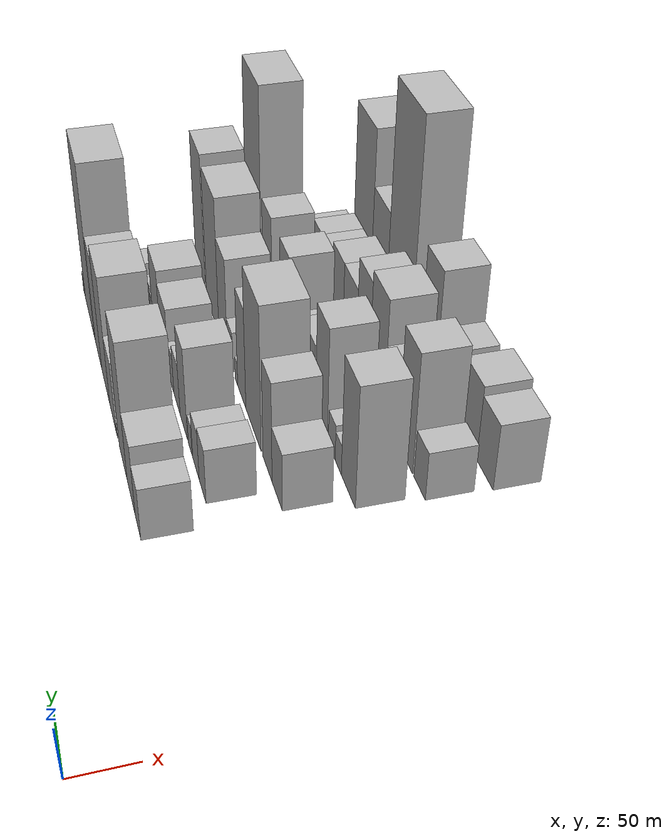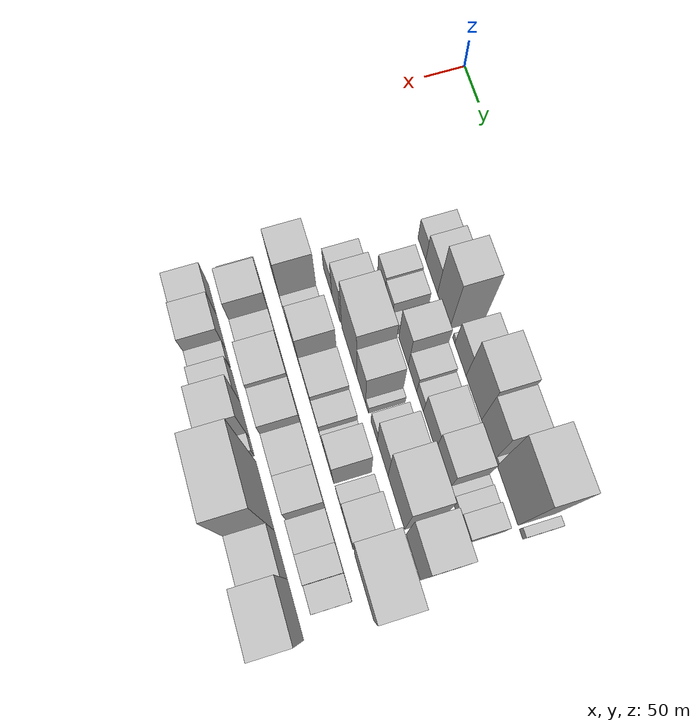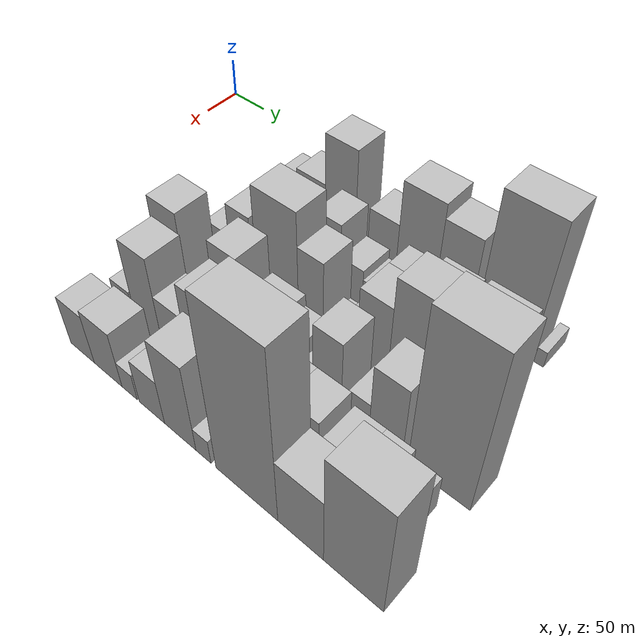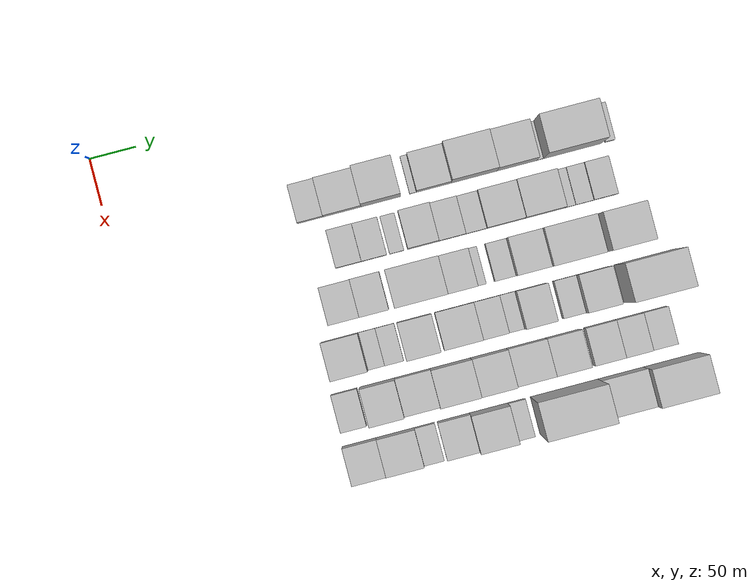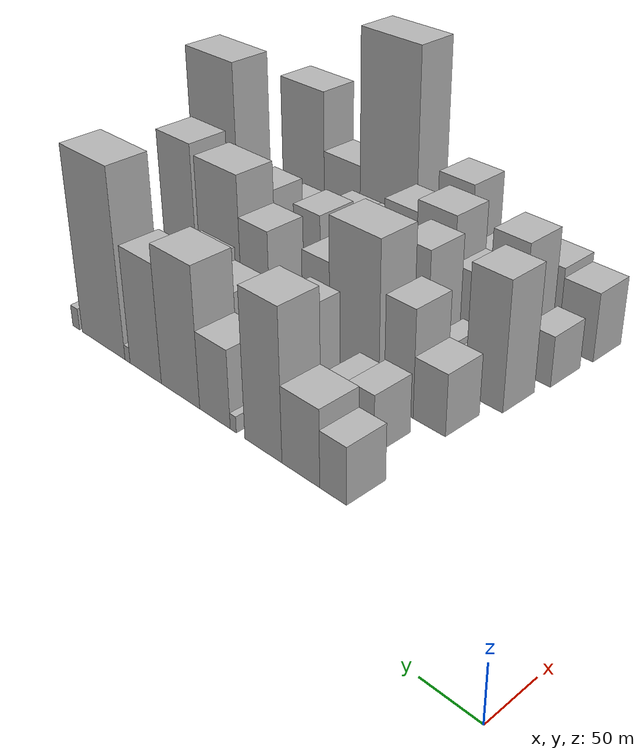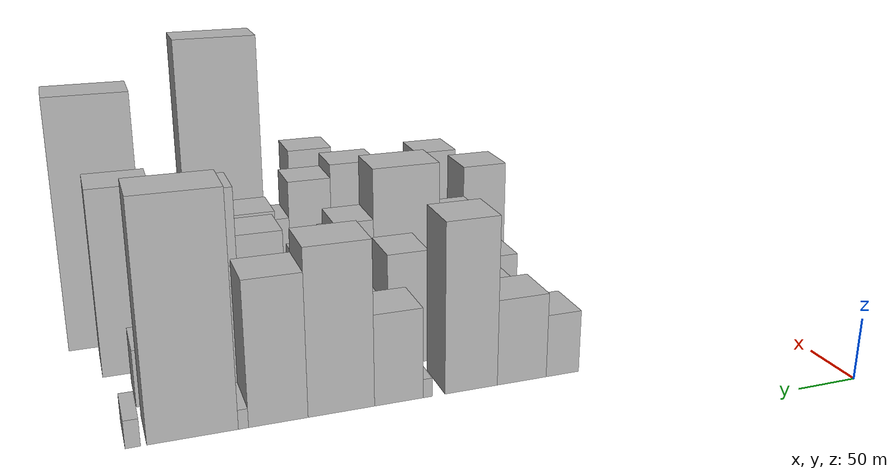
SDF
<sdf version="1.6">
 <world name="default">
  <model name="building_27">
   <static>1</static>
   <pose>100.0000 205.6077 0 0.000000 0.000000 0.000000</pose>
   <link name="link">
    <pose>0 0 25.50 0 0 0</pose>
    <collision name="collision"><geometry><box><size>40.0000 27.3926 51.0000</size></box></geometry></collision>
    <visual name="visual">
     <cast_shadows>0</cast_shadows>
     <geometry><box><size>40.0000 27.3926 51.0000</size></box></geometry>
     <material>
      <script>
       <uri>model://HANNAS_wall/materials/scripts</uri>
       <uri>model://HANNAS_wall/materials/textures</uri>
       <name>vrc/HANNAS_wall</name>
      </script>
     </material>
    </visual>
   </link>
  </model>
  <model name="building_28">
   <static>1</static>
   <pose>100.0000 239.4895 0 0.000000 0.000000 0.000000</pose>
   <link name="link">
    <pose>0 0 34.50 0 0 0</pose>
    <collision name="collision"><geometry><box><size>40.0000 40.3711 69.0000</size></box></geometry></collision>
    <visual name="visual">
     <cast_shadows>0</cast_shadows>
     <geometry><box><size>40.0000 40.3711 69.0000</size></box></geometry>
     <material>
      <script>
       <uri>model://HANNAS_wall/materials/scripts</uri>
       <uri>model://HANNAS_wall/materials/textures</uri>
       <name>vrc/HANNAS_wall</name>
      </script>
     </material>
    </visual>
   </link>
  </model>
  <model name="building_29">
   <static>1</static>
   <pose>100.0000 280.6004 0 0.000000 0.000000 0.000000</pose>
   <link name="link">
    <pose>0 0 67.50 0 0 0</pose>
    <collision name="collision"><geometry><box><size>40.0000 41.8506 135.0000</size></box></geometry></collision>
    <visual name="visual">
     <cast_shadows>0</cast_shadows>
     <geometry><box><size>40.0000 41.8506 135.0000</size></box></geometry>
     <material>
      <script>
       <uri>model://HANNAS_wall/materials/scripts</uri>
       <uri>model://HANNAS_wall/materials/textures</uri>
       <name>vrc/HANNAS_wall</name>
      </script>
     </material>
    </visual>
   </link>
  </model>
  <model name="building_30">
   <static>1</static>
   <pose>100.0000 315.0890 0 0.000000 0.000000 0.000000</pose>
   <link name="link">
    <pose>0 0 7.50 0 0 0</pose>
    <collision name="collision"><geometry><box><size>40.0000 7.1265 15.0000</size></box></geometry></collision>
    <visual name="visual">
     <cast_shadows>0</cast_shadows>
     <geometry><box><size>40.0000 7.1265 15.0000</size></box></geometry>
     <material>
      <script>
       <uri>model://HANNAS_wall/materials/scripts</uri>
       <uri>model://HANNAS_wall/materials/textures</uri>
       <name>vrc/HANNAS_wall</name>
      </script>
     </material>
    </visual>
   </link>
  </model>
  <model name="building_31">
   <static>1</static>
   <pose>100.0000 337.2113 0 0.000000 0.000000 0.000000</pose>
   <link name="link">
    <pose>0 0 36.00 0 0 0</pose>
    <collision name="collision"><geometry><box><size>40.0000 37.1180 72.0000</size></box></geometry></collision>
    <visual name="visual">
     <cast_shadows>0</cast_shadows>
     <geometry><box><size>40.0000 37.1180 72.0000</size></box></geometry>
     <material>
      <script>
       <uri>model://HANNAS_wall/materials/scripts</uri>
       <uri>model://HANNAS_wall/materials/textures</uri>
       <name>vrc/HANNAS_wall</name>
      </script>
     </material>
    </visual>
   </link>
  </model>
  <model name="building_32">
   <static>1</static>
   <pose>100.0000 380.3562 0 0.000000 0.000000 0.000000</pose>
   <link name="link">
    <pose>0 0 64.50 0 0 0</pose>
    <collision name="collision"><geometry><box><size>40.0000 49.1719 129.0000</size></box></geometry></collision>
    <visual name="visual">
     <cast_shadows>0</cast_shadows>
     <geometry><box><size>40.0000 49.1719 129.0000</size></box></geometry>
     <material>
      <script>
       <uri>model://HANNAS_wall/materials/scripts</uri>
       <uri>model://HANNAS_wall/materials/textures</uri>
       <name>vrc/HANNAS_wall</name>
      </script>
     </material>
    </visual>
   </link>
  </model>
  <model name="building_33">
   <static>1</static>
   <pose>100.0000 426.1538 0 0.000000 0.000000 0.000000</pose>
   <link name="link">
    <pose>0 0 55.50 0 0 0</pose>
    <collision name="collision"><geometry><box><size>40.0000 42.4232 111.0000</size></box></geometry></collision>
    <visual name="visual">
     <cast_shadows>0</cast_shadows>
     <geometry><box><size>40.0000 42.4232 111.0000</size></box></geometry>
     <material>
      <script>
       <uri>model://HANNAS_wall/materials/scripts</uri>
       <uri>model://HANNAS_wall/materials/textures</uri>
       <name>vrc/HANNAS_wall</name>
      </script>
     </material>
    </visual>
   </link>
  </model>
  <model name="building_34">
   <static>1</static>
   <pose>100.0000 450.9216 0 0.000000 0.000000 0.000000</pose>
   <link name="link">
    <pose>0 0 7.50 0 0 0</pose>
    <collision name="collision"><geometry><box><size>40.0000 7.1123 15.0000</size></box></geometry></collision>
    <visual name="visual">
     <cast_shadows>0</cast_shadows>
     <geometry><box><size>40.0000 7.1123 15.0000</size></box></geometry>
     <material>
      <script>
       <uri>model://HANNAS_wall/materials/scripts</uri>
       <uri>model://HANNAS_wall/materials/textures</uri>
       <name>vrc/HANNAS_wall</name>
      </script>
     </material>
    </visual>
   </link>
  </model>
  <model name="building_35">
   <static>1</static>
   <pose>100.0000 485.5800 0 0.000000 0.000000 0.000000</pose>
   <link name="link">
    <pose>0 0 88.50 0 0 0</pose>
    <collision name="collision"><geometry><box><size>40.0000 62.2045 177.0000</size></box></geometry></collision>
    <visual name="visual">
     <cast_shadows>0</cast_shadows>
     <geometry><box><size>40.0000 62.2045 177.0000</size></box></geometry>
     <material>
      <script>
       <uri>model://HANNAS_wall/materials/scripts</uri>
       <uri>model://HANNAS_wall/materials/textures</uri>
       <name>vrc/HANNAS_wall</name>
      </script>
     </material>
    </visual>
   </link>
  </model>
  <model name="building_36">
   <static>1</static>
   <pose>100.0000 525.7993 0 0.000000 0.000000 0.000000</pose>
   <link name="link">
    <pose>0 0 10.50 0 0 0</pose>
    <collision name="collision"><geometry><box><size>40.0000 10.2343 21.0000</size></box></geometry></collision>
    <visual name="visual">
     <cast_shadows>0</cast_shadows>
     <geometry><box><size>40.0000 10.2343 21.0000</size></box></geometry>
     <material>
      <script>
       <uri>model://HANNAS_wall/materials/scripts</uri>
       <uri>model://HANNAS_wall/materials/textures</uri>
       <name>vrc/HANNAS_wall</name>
      </script>
     </material>
    </visual>
   </link>
  </model>
  <model name="building_74">
   <static>1</static>
   <pose>155.0000 232.0547 0 0.000000 0.000000 0.000000</pose>
   <link name="link">
    <pose>0 0 27.00 0 0 0</pose>
    <collision name="collision"><geometry><box><size>40.0000 27.2698 54.0000</size></box></geometry></collision>
    <visual name="visual">
     <cast_shadows>0</cast_shadows>
     <geometry><box><size>40.0000 27.2698 54.0000</size></box></geometry>
     <material>
      <script>
       <uri>model://HANNAS_wall/materials/scripts</uri>
       <uri>model://HANNAS_wall/materials/textures</uri>
       <name>vrc/HANNAS_wall</name>
      </script>
     </material>
    </visual>
   </link>
  </model>
  <model name="building_75">
   <static>1</static>
   <pose>155.0000 259.1431 0 0.000000 0.000000 0.000000</pose>
   <link name="link">
    <pose>0 0 24.00 0 0 0</pose>
    <collision name="collision"><geometry><box><size>40.0000 26.9070 48.0000</size></box></geometry></collision>
    <visual name="visual">
     <cast_shadows>0</cast_shadows>
     <geometry><box><size>40.0000 26.9070 48.0000</size></box></geometry>
     <material>
      <script>
       <uri>model://HANNAS_wall/materials/scripts</uri>
       <uri>model://HANNAS_wall/materials/textures</uri>
       <name>vrc/HANNAS_wall</name>
      </script>
     </material>
    </visual>
   </link>
  </model>
  <model name="building_76">
   <static>1</static>
   <pose>155.0000 283.2390 0 0.000000 0.000000 0.000000</pose>
   <link name="link">
    <pose>0 0 15.00 0 0 0</pose>
    <collision name="collision"><geometry><box><size>40.0000 15.2848 30.0000</size></box></geometry></collision>
    <visual name="visual">
     <cast_shadows>0</cast_shadows>
     <geometry><box><size>40.0000 15.2848 30.0000</size></box></geometry>
     <material>
      <script>
       <uri>model://HANNAS_wall/materials/scripts</uri>
       <uri>model://HANNAS_wall/materials/textures</uri>
       <name>vrc/HANNAS_wall</name>
      </script>
     </material>
    </visual>
   </link>
  </model>
  <model name="building_77">
   <static>1</static>
   <pose>155.0000 311.3578 0 0.000000 0.000000 0.000000</pose>
   <link name="link">
    <pose>0 0 46.50 0 0 0</pose>
    <collision name="collision"><geometry><box><size>40.0000 32.9528 93.0000</size></box></geometry></collision>
    <visual name="visual">
     <cast_shadows>0</cast_shadows>
     <geometry><box><size>40.0000 32.9528 93.0000</size></box></geometry>
     <material>
      <script>
       <uri>model://HANNAS_wall/materials/scripts</uri>
       <uri>model://HANNAS_wall/materials/textures</uri>
       <name>vrc/HANNAS_wall</name>
      </script>
     </material>
    </visual>
   </link>
  </model>
  <model name="building_78">
   <static>1</static>
   <pose>155.0000 342.3246 0 0.000000 0.000000 0.000000</pose>
   <link name="link">
    <pose>0 0 25.50 0 0 0</pose>
    <collision name="collision"><geometry><box><size>40.0000 28.9808 51.0000</size></box></geometry></collision>
    <visual name="visual">
     <cast_shadows>0</cast_shadows>
     <geometry><box><size>40.0000 28.9808 51.0000</size></box></geometry>
     <material>
      <script>
       <uri>model://HANNAS_wall/materials/scripts</uri>
       <uri>model://HANNAS_wall/materials/textures</uri>
       <name>vrc/HANNAS_wall</name>
      </script>
     </material>
    </visual>
   </link>
  </model>
  <model name="building_79">
   <static>1</static>
   <pose>155.0000 367.9172 0 0.000000 0.000000 0.000000</pose>
   <link name="link">
    <pose>0 0 19.50 0 0 0</pose>
    <collision name="collision"><geometry><box><size>40.0000 22.2045 39.0000</size></box></geometry></collision>
    <visual name="visual">
     <cast_shadows>0</cast_shadows>
     <geometry><box><size>40.0000 22.2045 39.0000</size></box></geometry>
     <material>
      <script>
       <uri>model://HANNAS_wall/materials/scripts</uri>
       <uri>model://HANNAS_wall/materials/textures</uri>
       <name>vrc/HANNAS_wall</name>
      </script>
     </material>
    </visual>
   </link>
  </model>
  <model name="building_80">
   <static>1</static>
   <pose>155.0000 399.4672 0 0.000000 0.000000 0.000000</pose>
   <link name="link">
    <pose>0 0 36.00 0 0 0</pose>
    <collision name="collision"><geometry><box><size>40.0000 40.8955 72.0000</size></box></geometry></collision>
    <visual name="visual">
     <cast_shadows>0</cast_shadows>
     <geometry><box><size>40.0000 40.8955 72.0000</size></box></geometry>
     <material>
      <script>
       <uri>model://HANNAS_wall/materials/scripts</uri>
       <uri>model://HANNAS_wall/materials/textures</uri>
       <name>vrc/HANNAS_wall</name>
      </script>
     </material>
    </visual>
   </link>
  </model>
  <model name="building_81">
   <static>1</static>
   <pose>155.0000 441.2642 0 0.000000 0.000000 0.000000</pose>
   <link name="link">
    <pose>0 0 42.00 0 0 0</pose>
    <collision name="collision"><geometry><box><size>40.0000 42.6985 84.0000</size></box></geometry></collision>
    <visual name="visual">
     <cast_shadows>0</cast_shadows>
     <geometry><box><size>40.0000 42.6985 84.0000</size></box></geometry>
     <material>
      <script>
       <uri>model://HANNAS_wall/materials/scripts</uri>
       <uri>model://HANNAS_wall/materials/textures</uri>
       <name>vrc/HANNAS_wall</name>
      </script>
     </material>
    </visual>
   </link>
  </model>
  <model name="building_82">
   <static>1</static>
   <pose>155.0000 468.2930 0 0.000000 0.000000 0.000000</pose>
   <link name="link">
    <pose>0 0 13.50 0 0 0</pose>
    <collision name="collision"><geometry><box><size>40.0000 11.3591 27.0000</size></box></geometry></collision>
    <visual name="visual">
     <cast_shadows>0</cast_shadows>
     <geometry><box><size>40.0000 11.3591 27.0000</size></box></geometry>
     <material>
      <script>
       <uri>model://HANNAS_wall/materials/scripts</uri>
       <uri>model://HANNAS_wall/materials/textures</uri>
       <name>vrc/HANNAS_wall</name>
      </script>
     </material>
    </visual>
   </link>
  </model>
  <model name="building_83">
   <static>1</static>
   <pose>155.0000 483.4692 0 0.000000 0.000000 0.000000</pose>
   <link name="link">
    <pose>0 0 16.50 0 0 0</pose>
    <collision name="collision"><geometry><box><size>40.0000 18.9933 33.0000</size></box></geometry></collision>
    <visual name="visual">
     <cast_shadows>0</cast_shadows>
     <geometry><box><size>40.0000 18.9933 33.0000</size></box></geometry>
     <material>
      <script>
       <uri>model://HANNAS_wall/materials/scripts</uri>
       <uri>model://HANNAS_wall/materials/textures</uri>
       <name>vrc/HANNAS_wall</name>
      </script>
     </material>
    </visual>
   </link>
  </model>
  <model name="building_84">
   <static>1</static>
   <pose>155.0000 505.7651 0 0.000000 0.000000 0.000000</pose>
   <link name="link">
    <pose>0 0 22.50 0 0 0</pose>
    <collision name="collision"><geometry><box><size>40.0000 25.5984 45.0000</size></box></geometry></collision>
    <visual name="visual">
     <cast_shadows>0</cast_shadows>
     <geometry><box><size>40.0000 25.5984 45.0000</size></box></geometry>
     <material>
      <script>
       <uri>model://HANNAS_wall/materials/scripts</uri>
       <uri>model://HANNAS_wall/materials/textures</uri>
       <name>vrc/HANNAS_wall</name>
      </script>
     </material>
    </visual>
   </link>
  </model>
  <model name="building_127">
   <static>1</static>
   <pose>210.0000 212.5537 0 0.000000 0.000000 0.000000</pose>
   <link name="link">
    <pose>0 0 28.50 0 0 0</pose>
    <collision name="collision"><geometry><box><size>40.0000 33.4415 57.0000</size></box></geometry></collision>
    <visual name="visual">
     <cast_shadows>0</cast_shadows>
     <geometry><box><size>40.0000 33.4415 57.0000</size></box></geometry>
     <material>
      <script>
       <uri>model://HANNAS_wall/materials/scripts</uri>
       <uri>model://HANNAS_wall/materials/textures</uri>
       <name>vrc/HANNAS_wall</name>
      </script>
     </material>
    </visual>
   </link>
  </model>
  <model name="building_128">
   <static>1</static>
   <pose>210.0000 244.8355 0 0.000000 0.000000 0.000000</pose>
   <link name="link">
    <pose>0 0 49.50 0 0 0</pose>
    <collision name="collision"><geometry><box><size>40.0000 31.1221 99.0000</size></box></geometry></collision>
    <visual name="visual">
     <cast_shadows>0</cast_shadows>
     <geometry><box><size>40.0000 31.1221 99.0000</size></box></geometry>
     <material>
      <script>
       <uri>model://HANNAS_wall/materials/scripts</uri>
       <uri>model://HANNAS_wall/materials/textures</uri>
       <name>vrc/HANNAS_wall</name>
      </script>
     </material>
    </visual>
   </link>
  </model>
  <model name="building_129">
   <static>1</static>
   <pose>210.0000 294.2511 0 0.000000 0.000000 0.000000</pose>
   <link name="link">
    <pose>0 0 72.00 0 0 0</pose>
    <collision name="collision"><geometry><box><size>40.0000 55.7090 144.0000</size></box></geometry></collision>
    <visual name="visual">
     <cast_shadows>0</cast_shadows>
     <geometry><box><size>40.0000 55.7090 144.0000</size></box></geometry>
     <material>
      <script>
       <uri>model://HANNAS_wall/materials/scripts</uri>
       <uri>model://HANNAS_wall/materials/textures</uri>
       <name>vrc/HANNAS_wall</name>
      </script>
     </material>
    </visual>
   </link>
  </model>
  <model name="building_130">
   <static>1</static>
   <pose>210.0000 338.0391 0 0.000000 0.000000 0.000000</pose>
   <link name="link">
    <pose>0 0 51.00 0 0 0</pose>
    <collision name="collision"><geometry><box><size>40.0000 31.8671 102.0000</size></box></geometry></collision>
    <visual name="visual">
     <cast_shadows>0</cast_shadows>
     <geometry><box><size>40.0000 31.8671 102.0000</size></box></geometry>
     <material>
      <script>
       <uri>model://HANNAS_wall/materials/scripts</uri>
       <uri>model://HANNAS_wall/materials/textures</uri>
       <name>vrc/HANNAS_wall</name>
      </script>
     </material>
    </visual>
   </link>
  </model>
  <model name="building_131">
   <static>1</static>
   <pose>210.0000 359.0696 0 0.000000 0.000000 0.000000</pose>
   <link name="link">
    <pose>0 0 12.00 0 0 0</pose>
    <collision name="collision"><geometry><box><size>40.0000 10.1938 24.0000</size></box></geometry></collision>
    <visual name="visual">
     <cast_shadows>0</cast_shadows>
     <geometry><box><size>40.0000 10.1938 24.0000</size></box></geometry>
     <material>
      <script>
       <uri>model://HANNAS_wall/materials/scripts</uri>
       <uri>model://HANNAS_wall/materials/textures</uri>
       <name>vrc/HANNAS_wall</name>
      </script>
     </material>
    </visual>
   </link>
  </model>
  <model name="building_132">
   <static>1</static>
   <pose>210.0000 384.2644 0 0.000000 0.000000 0.000000</pose>
   <link name="link">
    <pose>0 0 21.00 0 0 0</pose>
    <collision name="collision"><geometry><box><size>40.0000 22.1958 42.0000</size></box></geometry></collision>
    <visual name="visual">
     <cast_shadows>0</cast_shadows>
     <geometry><box><size>40.0000 22.1958 42.0000</size></box></geometry>
     <material>
      <script>
       <uri>model://HANNAS_wall/materials/scripts</uri>
       <uri>model://HANNAS_wall/materials/textures</uri>
       <name>vrc/HANNAS_wall</name>
      </script>
     </material>
    </visual>
   </link>
  </model>
  <model name="building_133">
   <static>1</static>
   <pose>210.0000 413.6392 0 0.000000 0.000000 0.000000</pose>
   <link name="link">
    <pose>0 0 51.00 0 0 0</pose>
    <collision name="collision"><geometry><box><size>40.0000 36.5537 102.0000</size></box></geometry></collision>
    <visual name="visual">
     <cast_shadows>0</cast_shadows>
     <geometry><box><size>40.0000 36.5537 102.0000</size></box></geometry>
     <material>
      <script>
       <uri>model://HANNAS_wall/materials/scripts</uri>
       <uri>model://HANNAS_wall/materials/textures</uri>
       <name>vrc/HANNAS_wall</name>
      </script>
     </material>
    </visual>
   </link>
  </model>
  <model name="building_134">
   <static>1</static>
   <pose>210.0000 459.7315 0 0.000000 0.000000 0.000000</pose>
   <link name="link">
    <pose>0 0 70.50 0 0 0</pose>
    <collision name="collision"><geometry><box><size>40.0000 55.6308 141.0000</size></box></geometry></collision>
    <visual name="visual">
     <cast_shadows>0</cast_shadows>
     <geometry><box><size>40.0000 55.6308 141.0000</size></box></geometry>
     <material>
      <script>
       <uri>model://HANNAS_wall/materials/scripts</uri>
       <uri>model://HANNAS_wall/materials/textures</uri>
       <name>vrc/HANNAS_wall</name>
      </script>
     </material>
    </visual>
   </link>
  </model>
  <model name="building_135">
   <static>1</static>
   <pose>210.0000 515.5451 0 0.000000 0.000000 0.000000</pose>
   <link name="link">
    <pose>0 0 75.00 0 0 0</pose>
    <collision name="collision"><geometry><box><size>40.0000 45.9964 150.0000</size></box></geometry></collision>
    <visual name="visual">
     <cast_shadows>0</cast_shadows>
     <geometry><box><size>40.0000 45.9964 150.0000</size></box></geometry>
     <material>
      <script>
       <uri>model://HANNAS_wall/materials/scripts</uri>
       <uri>model://HANNAS_wall/materials/textures</uri>
       <name>vrc/HANNAS_wall</name>
      </script>
     </material>
    </visual>
   </link>
  </model>
  <model name="building_177">
   <static>1</static>
   <pose>265.0000 204.1315 0 0.000000 0.000000 0.000000</pose>
   <link name="link">
    <pose>0 0 60.00 0 0 0</pose>
    <collision name="collision"><geometry><box><size>40.0000 39.0511 120.0000</size></box></geometry></collision>
    <visual name="visual">
     <cast_shadows>0</cast_shadows>
     <geometry><box><size>40.0000 39.0511 120.0000</size></box></geometry>
     <material>
      <script>
       <uri>model://HANNAS_wall/materials/scripts</uri>
       <uri>model://HANNAS_wall/materials/textures</uri>
       <name>vrc/HANNAS_wall</name>
      </script>
     </material>
    </visual>
   </link>
  </model>
  <model name="building_178">
   <static>1</static>
   <pose>265.0000 232.5227 0 0.000000 0.000000 0.000000</pose>
   <link name="link">
    <pose>0 0 15.00 0 0 0</pose>
    <collision name="collision"><geometry><box><size>40.0000 17.7314 30.0000</size></box></geometry></collision>
    <visual name="visual">
     <cast_shadows>0</cast_shadows>
     <geometry><box><size>40.0000 17.7314 30.0000</size></box></geometry>
     <material>
      <script>
       <uri>model://HANNAS_wall/materials/scripts</uri>
       <uri>model://HANNAS_wall/materials/textures</uri>
       <name>vrc/HANNAS_wall</name>
      </script>
     </material>
    </visual>
   </link>
  </model>
  <model name="building_179">
   <static>1</static>
   <pose>265.0000 251.4966 0 0.000000 0.000000 0.000000</pose>
   <link name="link">
    <pose>0 0 18.00 0 0 0</pose>
    <collision name="collision"><geometry><box><size>40.0000 20.2165 36.0000</size></box></geometry></collision>
    <visual name="visual">
     <cast_shadows>0</cast_shadows>
     <geometry><box><size>40.0000 20.2165 36.0000</size></box></geometry>
     <material>
      <script>
       <uri>model://HANNAS_wall/materials/scripts</uri>
       <uri>model://HANNAS_wall/materials/textures</uri>
       <name>vrc/HANNAS_wall</name>
      </script>
     </material>
    </visual>
   </link>
  </model>
  <model name="building_180">
   <static>1</static>
   <pose>265.0000 282.6436 0 0.000000 0.000000 0.000000</pose>
   <link name="link">
    <pose>0 0 57.00 0 0 0</pose>
    <collision name="collision"><geometry><box><size>40.0000 36.0775 114.0000</size></box></geometry></collision>
    <visual name="visual">
     <cast_shadows>0</cast_shadows>
     <geometry><box><size>40.0000 36.0775 114.0000</size></box></geometry>
     <material>
      <script>
       <uri>model://HANNAS_wall/materials/scripts</uri>
       <uri>model://HANNAS_wall/materials/textures</uri>
       <name>vrc/HANNAS_wall</name>
      </script>
     </material>
    </visual>
   </link>
  </model>
  <model name="building_181">
   <static>1</static>
   <pose>265.0000 325.3376 0 0.000000 0.000000 0.000000</pose>
   <link name="link">
    <pose>0 0 34.50 0 0 0</pose>
    <collision name="collision"><geometry><box><size>40.0000 41.3106 69.0000</size></box></geometry></collision>
    <visual name="visual">
     <cast_shadows>0</cast_shadows>
     <geometry><box><size>40.0000 41.3106 69.0000</size></box></geometry>
     <material>
      <script>
       <uri>model://HANNAS_wall/materials/scripts</uri>
       <uri>model://HANNAS_wall/materials/textures</uri>
       <name>vrc/HANNAS_wall</name>
      </script>
     </material>
    </visual>
   </link>
  </model>
  <model name="building_182">
   <static>1</static>
   <pose>265.0000 359.8167 0 0.000000 0.000000 0.000000</pose>
   <link name="link">
    <pose>0 0 27.00 0 0 0</pose>
    <collision name="collision"><geometry><box><size>40.0000 27.6477 54.0000</size></box></geometry></collision>
    <visual name="visual">
     <cast_shadows>0</cast_shadows>
     <geometry><box><size>40.0000 27.6477 54.0000</size></box></geometry>
     <material>
      <script>
       <uri>model://HANNAS_wall/materials/scripts</uri>
       <uri>model://HANNAS_wall/materials/textures</uri>
       <name>vrc/HANNAS_wall</name>
      </script>
     </material>
    </visual>
   </link>
  </model>
  <model name="building_183">
   <static>1</static>
   <pose>265.0000 381.9161 0 0.000000 0.000000 0.000000</pose>
   <link name="link">
    <pose>0 0 16.50 0 0 0</pose>
    <collision name="collision"><geometry><box><size>40.0000 16.5509 33.0000</size></box></geometry></collision>
    <visual name="visual">
     <cast_shadows>0</cast_shadows>
     <geometry><box><size>40.0000 16.5509 33.0000</size></box></geometry>
     <material>
      <script>
       <uri>model://HANNAS_wall/materials/scripts</uri>
       <uri>model://HANNAS_wall/materials/textures</uri>
       <name>vrc/HANNAS_wall</name>
      </script>
     </material>
    </visual>
   </link>
  </model>
  <model name="building_184">
   <static>1</static>
   <pose>265.0000 406.8162 0 0.000000 0.000000 0.000000</pose>
   <link name="link">
    <pose>0 0 49.50 0 0 0</pose>
    <collision name="collision"><geometry><box><size>40.0000 33.2494 99.0000</size></box></geometry></collision>
    <visual name="visual">
     <cast_shadows>0</cast_shadows>
     <geometry><box><size>40.0000 33.2494 99.0000</size></box></geometry>
     <material>
      <script>
       <uri>model://HANNAS_wall/materials/scripts</uri>
       <uri>model://HANNAS_wall/materials/textures</uri>
       <name>vrc/HANNAS_wall</name>
      </script>
     </material>
    </visual>
   </link>
  </model>
  <model name="building_185">
   <static>1</static>
   <pose>265.0000 443.2936 0 0.000000 0.000000 0.000000</pose>
   <link name="link">
    <pose>0 0 22.50 0 0 0</pose>
    <collision name="collision"><geometry><box><size>40.0000 23.7054 45.0000</size></box></geometry></collision>
    <visual name="visual">
     <cast_shadows>0</cast_shadows>
     <geometry><box><size>40.0000 23.7054 45.0000</size></box></geometry>
     <material>
      <script>
       <uri>model://HANNAS_wall/materials/scripts</uri>
       <uri>model://HANNAS_wall/materials/textures</uri>
       <name>vrc/HANNAS_wall</name>
      </script>
     </material>
    </visual>
   </link>
  </model>
  <model name="building_186">
   <static>1</static>
   <pose>265.0000 473.2966 0 0.000000 0.000000 0.000000</pose>
   <link name="link">
    <pose>0 0 49.50 0 0 0</pose>
    <collision name="collision"><geometry><box><size>40.0000 36.3007 99.0000</size></box></geometry></collision>
    <visual name="visual">
     <cast_shadows>0</cast_shadows>
     <geometry><box><size>40.0000 36.3007 99.0000</size></box></geometry>
     <material>
      <script>
       <uri>model://HANNAS_wall/materials/scripts</uri>
       <uri>model://HANNAS_wall/materials/textures</uri>
       <name>vrc/HANNAS_wall</name>
      </script>
     </material>
    </visual>
   </link>
  </model>
  <model name="building_187">
   <static>1</static>
   <pose>265.0000 529.3288 0 0.000000 0.000000 0.000000</pose>
   <link name="link">
    <pose>0 0 103.50 0 0 0</pose>
    <collision name="collision"><geometry><box><size>40.0000 63.7636 207.0000</size></box></geometry></collision>
    <visual name="visual">
     <cast_shadows>0</cast_shadows>
     <geometry><box><size>40.0000 63.7636 207.0000</size></box></geometry>
     <material>
      <script>
       <uri>model://HANNAS_wall/materials/scripts</uri>
       <uri>model://HANNAS_wall/materials/textures</uri>
       <name>vrc/HANNAS_wall</name>
      </script>
     </material>
    </visual>
   </link>
  </model>
  <model name="building_228">
   <static>1</static>
   <pose>320.0000 193.7207 0 0.000000 0.000000 0.000000</pose>
   <link name="link">
    <pose>0 0 24.00 0 0 0</pose>
    <collision name="collision"><geometry><box><size>40.0000 27.6970 48.0000</size></box></geometry></collision>
    <visual name="visual">
     <cast_shadows>0</cast_shadows>
     <geometry><box><size>40.0000 27.6970 48.0000</size></box></geometry>
     <material>
      <script>
       <uri>model://HANNAS_wall/materials/scripts</uri>
       <uri>model://HANNAS_wall/materials/textures</uri>
       <name>vrc/HANNAS_wall</name>
      </script>
     </material>
    </visual>
   </link>
  </model>
  <model name="building_229">
   <static>1</static>
   <pose>320.0000 229.1163 0 0.000000 0.000000 0.000000</pose>
   <link name="link">
    <pose>0 0 60.00 0 0 0</pose>
    <collision name="collision"><geometry><box><size>40.0000 37.0941 120.0000</size></box></geometry></collision>
    <visual name="visual">
     <cast_shadows>0</cast_shadows>
     <geometry><box><size>40.0000 37.0941 120.0000</size></box></geometry>
     <material>
      <script>
       <uri>model://HANNAS_wall/materials/scripts</uri>
       <uri>model://HANNAS_wall/materials/textures</uri>
       <name>vrc/HANNAS_wall</name>
      </script>
     </material>
    </visual>
   </link>
  </model>
  <model name="building_230">
   <static>1</static>
   <pose>320.0000 266.5974 0 0.000000 0.000000 0.000000</pose>
   <link name="link">
    <pose>0 0 36.00 0 0 0</pose>
    <collision name="collision"><geometry><box><size>40.0000 37.8681 72.0000</size></box></geometry></collision>
    <visual name="visual">
     <cast_shadows>0</cast_shadows>
     <geometry><box><size>40.0000 37.8681 72.0000</size></box></geometry>
     <material>
      <script>
       <uri>model://HANNAS_wall/materials/scripts</uri>
       <uri>model://HANNAS_wall/materials/textures</uri>
       <name>vrc/HANNAS_wall</name>
      </script>
     </material>
    </visual>
   </link>
  </model>
  <model name="building_231">
   <static>1</static>
   <pose>320.0000 307.1173 0 0.000000 0.000000 0.000000</pose>
   <link name="link">
    <pose>0 0 58.50 0 0 0</pose>
    <collision name="collision"><geometry><box><size>40.0000 43.1718 117.0000</size></box></geometry></collision>
    <visual name="visual">
     <cast_shadows>0</cast_shadows>
     <geometry><box><size>40.0000 43.1718 117.0000</size></box></geometry>
     <material>
      <script>
       <uri>model://HANNAS_wall/materials/scripts</uri>
       <uri>model://HANNAS_wall/materials/textures</uri>
       <name>vrc/HANNAS_wall</name>
      </script>
     </material>
    </visual>
   </link>
  </model>
  <model name="building_232">
   <static>1</static>
   <pose>320.0000 347.7910 0 0.000000 0.000000 0.000000</pose>
   <link name="link">
    <pose>0 0 52.50 0 0 0</pose>
    <collision name="collision"><geometry><box><size>40.0000 38.1755 105.0000</size></box></geometry></collision>
    <visual name="visual">
     <cast_shadows>0</cast_shadows>
     <geometry><box><size>40.0000 38.1755 105.0000</size></box></geometry>
     <material>
      <script>
       <uri>model://HANNAS_wall/materials/scripts</uri>
       <uri>model://HANNAS_wall/materials/textures</uri>
       <name>vrc/HANNAS_wall</name>
      </script>
     </material>
    </visual>
   </link>
  </model>
  <model name="building_233">
   <static>1</static>
   <pose>320.0000 387.8623 0 0.000000 0.000000 0.000000</pose>
   <link name="link">
    <pose>0 0 36.00 0 0 0</pose>
    <collision name="collision"><geometry><box><size>40.0000 41.9673 72.0000</size></box></geometry></collision>
    <visual name="visual">
     <cast_shadows>0</cast_shadows>
     <geometry><box><size>40.0000 41.9673 72.0000</size></box></geometry>
     <material>
      <script>
       <uri>model://HANNAS_wall/materials/scripts</uri>
       <uri>model://HANNAS_wall/materials/textures</uri>
       <name>vrc/HANNAS_wall</name>
      </script>
     </material>
    </visual>
   </link>
  </model>
  <model name="building_234">
   <static>1</static>
   <pose>320.0000 427.3798 0 0.000000 0.000000 0.000000</pose>
   <link name="link">
    <pose>0 0 36.00 0 0 0</pose>
    <collision name="collision"><geometry><box><size>40.0000 37.0677 72.0000</size></box></geometry></collision>
    <visual name="visual">
     <cast_shadows>0</cast_shadows>
     <geometry><box><size>40.0000 37.0677 72.0000</size></box></geometry>
     <material>
      <script>
       <uri>model://HANNAS_wall/materials/scripts</uri>
       <uri>model://HANNAS_wall/materials/textures</uri>
       <name>vrc/HANNAS_wall</name>
      </script>
     </material>
    </visual>
   </link>
  </model>
  <model name="building_235">
   <static>1</static>
   <pose>320.0000 466.4040 0 0.000000 0.000000 0.000000</pose>
   <link name="link">
    <pose>0 0 28.50 0 0 0</pose>
    <collision name="collision"><geometry><box><size>40.0000 32.9806 57.0000</size></box></geometry></collision>
    <visual name="visual">
     <cast_shadows>0</cast_shadows>
     <geometry><box><size>40.0000 32.9806 57.0000</size></box></geometry>
     <material>
      <script>
       <uri>model://HANNAS_wall/materials/scripts</uri>
       <uri>model://HANNAS_wall/materials/textures</uri>
       <name>vrc/HANNAS_wall</name>
      </script>
     </material>
    </visual>
   </link>
  </model>
  <model name="building_236">
   <static>1</static>
   <pose>320.0000 497.2661 0 0.000000 0.000000 0.000000</pose>
   <link name="link">
    <pose>0 0 28.50 0 0 0</pose>
    <collision name="collision"><geometry><box><size>40.0000 28.7436 57.0000</size></box></geometry></collision>
    <visual name="visual">
     <cast_shadows>0</cast_shadows>
     <geometry><box><size>40.0000 28.7436 57.0000</size></box></geometry>
     <material>
      <script>
       <uri>model://HANNAS_wall/materials/scripts</uri>
       <uri>model://HANNAS_wall/materials/textures</uri>
       <name>vrc/HANNAS_wall</name>
      </script>
     </material>
    </visual>
   </link>
  </model>
  <model name="building_237">
   <static>1</static>
   <pose>320.0000 525.0618 0 0.000000 0.000000 0.000000</pose>
   <link name="link">
    <pose>0 0 22.50 0 0 0</pose>
    <collision name="collision"><geometry><box><size>40.0000 26.8478 45.0000</size></box></geometry></collision>
    <visual name="visual">
     <cast_shadows>0</cast_shadows>
     <geometry><box><size>40.0000 26.8478 45.0000</size></box></geometry>
     <material>
      <script>
       <uri>model://HANNAS_wall/materials/scripts</uri>
       <uri>model://HANNAS_wall/materials/textures</uri>
       <name>vrc/HANNAS_wall</name>
      </script>
     </material>
    </visual>
   </link>
  </model>
  <model name="building_282">
   <static>1</static>
   <pose>375.0000 195.5981 0 0.000000 0.000000 0.000000</pose>
   <link name="link">
    <pose>0 0 33.00 0 0 0</pose>
    <collision name="collision"><geometry><box><size>40.0000 36.3010 66.0000</size></box></geometry></collision>
    <visual name="visual">
     <cast_shadows>0</cast_shadows>
     <geometry><box><size>40.0000 36.3010 66.0000</size></box></geometry>
     <material>
      <script>
       <uri>model://HANNAS_wall/materials/scripts</uri>
       <uri>model://HANNAS_wall/materials/textures</uri>
       <name>vrc/HANNAS_wall</name>
      </script>
     </material>
    </visual>
   </link>
  </model>
  <model name="building_283">
   <static>1</static>
   <pose>375.0000 234.0534 0 0.000000 0.000000 0.000000</pose>
   <link name="link">
    <pose>0 0 37.50 0 0 0</pose>
    <collision name="collision"><geometry><box><size>40.0000 40.6096 75.0000</size></box></geometry></collision>
    <visual name="visual">
     <cast_shadows>0</cast_shadows>
     <geometry><box><size>40.0000 40.6096 75.0000</size></box></geometry>
     <material>
      <script>
       <uri>model://HANNAS_wall/materials/scripts</uri>
       <uri>model://HANNAS_wall/materials/textures</uri>
       <name>vrc/HANNAS_wall</name>
      </script>
     </material>
    </visual>
   </link>
  </model>
  <model name="building_284">
   <static>1</static>
   <pose>375.0000 265.0513 0 0.000000 0.000000 0.000000</pose>
   <link name="link">
    <pose>0 0 18.00 0 0 0</pose>
    <collision name="collision"><geometry><box><size>40.0000 21.3864 36.0000</size></box></geometry></collision>
    <visual name="visual">
     <cast_shadows>0</cast_shadows>
     <geometry><box><size>40.0000 21.3864 36.0000</size></box></geometry>
     <material>
      <script>
       <uri>model://HANNAS_wall/materials/scripts</uri>
       <uri>model://HANNAS_wall/materials/textures</uri>
       <name>vrc/HANNAS_wall</name>
      </script>
     </material>
    </visual>
   </link>
  </model>
  <model name="building_285">
   <static>1</static>
   <pose>375.0000 295.9792 0 0.000000 0.000000 0.000000</pose>
   <link name="link">
    <pose>0 0 30.00 0 0 0</pose>
    <collision name="collision"><geometry><box><size>40.0000 34.4694 60.0000</size></box></geometry></collision>
    <visual name="visual">
     <cast_shadows>0</cast_shadows>
     <geometry><box><size>40.0000 34.4694 60.0000</size></box></geometry>
     <material>
      <script>
       <uri>model://HANNAS_wall/materials/scripts</uri>
       <uri>model://HANNAS_wall/materials/textures</uri>
       <name>vrc/HANNAS_wall</name>
      </script>
     </material>
    </visual>
   </link>
  </model>
  <model name="building_286">
   <static>1</static>
   <pose>375.0000 333.5577 0 0.000000 0.000000 0.000000</pose>
   <link name="link">
    <pose>0 0 58.50 0 0 0</pose>
    <collision name="collision"><geometry><box><size>40.0000 40.6874 117.0000</size></box></geometry></collision>
    <visual name="visual">
     <cast_shadows>0</cast_shadows>
     <geometry><box><size>40.0000 40.6874 117.0000</size></box></geometry>
     <material>
      <script>
       <uri>model://HANNAS_wall/materials/scripts</uri>
       <uri>model://HANNAS_wall/materials/textures</uri>
       <name>vrc/HANNAS_wall</name>
      </script>
     </material>
    </visual>
   </link>
  </model>
  <model name="building_287">
   <static>1</static>
   <pose>375.0000 363.2494 0 0.000000 0.000000 0.000000</pose>
   <link name="link">
    <pose>0 0 16.50 0 0 0</pose>
    <collision name="collision"><geometry><box><size>40.0000 18.6960 33.0000</size></box></geometry></collision>
    <visual name="visual">
     <cast_shadows>0</cast_shadows>
     <geometry><box><size>40.0000 18.6960 33.0000</size></box></geometry>
     <material>
      <script>
       <uri>model://HANNAS_wall/materials/scripts</uri>
       <uri>model://HANNAS_wall/materials/textures</uri>
       <name>vrc/HANNAS_wall</name>
      </script>
     </material>
    </visual>
   </link>
  </model>
  <model name="building_288">
   <static>1</static>
   <pose>375.0000 414.6728 0 0.000000 0.000000 0.000000</pose>
   <link name="link">
    <pose>0 0 112.50 0 0 0</pose>
    <collision name="collision"><geometry><box><size>40.0000 72.1508 225.0000</size></box></geometry></collision>
    <visual name="visual">
     <cast_shadows>0</cast_shadows>
     <geometry><box><size>40.0000 72.1508 225.0000</size></box></geometry>
     <material>
      <script>
       <uri>model://HANNAS_wall/materials/scripts</uri>
       <uri>model://HANNAS_wall/materials/textures</uri>
       <name>vrc/HANNAS_wall</name>
      </script>
     </material>
    </visual>
   </link>
  </model>
  <model name="building_289">
   <static>1</static>
   <pose>375.0000 475.1379 0 0.000000 0.000000 0.000000</pose>
   <link name="link">
    <pose>0 0 45.00 0 0 0</pose>
    <collision name="collision"><geometry><box><size>40.0000 48.7795 90.0000</size></box></geometry></collision>
    <visual name="visual">
     <cast_shadows>0</cast_shadows>
     <geometry><box><size>40.0000 48.7795 90.0000</size></box></geometry>
     <material>
      <script>
       <uri>model://HANNAS_wall/materials/scripts</uri>
       <uri>model://HANNAS_wall/materials/textures</uri>
       <name>vrc/HANNAS_wall</name>
      </script>
     </material>
    </visual>
   </link>
  </model>
  <model name="building_290">
   <static>1</static>
   <pose>375.0000 529.2934 0 0.000000 0.000000 0.000000</pose>
   <link name="link">
    <pose>0 0 75.00 0 0 0</pose>
    <collision name="collision"><geometry><box><size>40.0000 59.5315 150.0000</size></box></geometry></collision>
    <visual name="visual">
     <cast_shadows>0</cast_shadows>
     <geometry><box><size>40.0000 59.5315 150.0000</size></box></geometry>
     <material>
      <script>
       <uri>model://HANNAS_wall/materials/scripts</uri>
       <uri>model://HANNAS_wall/materials/textures</uri>
       <name>vrc/HANNAS_wall</name>
      </script>
     </material>
    </visual>
   </link>
  </model>
 </world>
</sdf>
